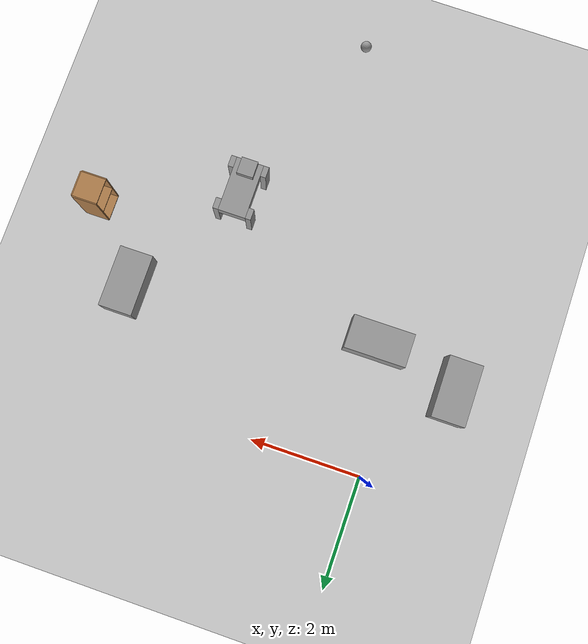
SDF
<sdf version="1.6">
 <world name="default">
  <model name="ground_plane">
   <static>1</static>
   <link name="link">
    <collision name="collision">
     <geometry><plane><normal>0 0 1</normal><size>100 100</size></plane></geometry>
     <surface>
      <contact><collide_bitmask>65535</collide_bitmask></contact>
      <friction><ode><mu>100</mu><mu2>50</mu2></ode></friction>
     </surface>
    </collision>
    <visual name="visual">
     <cast_shadows>0</cast_shadows>
     <geometry><plane><normal>0 0 1</normal><size>100 100</size></plane></geometry>
     <material>
      <script><uri>file://media/materials/scripts/gazebo.material</uri><name>Gazebo/Grey</name></script>
     </material>
    </visual>
   </link>
  </model>
  <model name="robot_clone">
   <link name="link_1_clone">
    <inertial>
     <mass>1</mass>
     <inertia>
      <ixx>0.166667</ixx>
      <ixy>0</ixy>
      <ixz>0</ixz>
      <iyy>0.166667</iyy>
      <iyz>0</iyz>
      <izz>0.166667</izz>
     </inertia>
    </inertial>
    <pose>1e-06 0.058332 0.141667 0 -0 0</pose>
    <visual name="visual">
     <geometry><box><size>0.5 1 0.2</size></box></geometry>
     <material>
      <lighting>1</lighting>
      <script><uri>file://media/materials/scripts/gazebo.material</uri><name>Gazebo/Grey</name></script>
      <shader type="pixel"><normal_map>__default__</normal_map></shader>
      <ambient>0.3 0.3 0.3 1</ambient>
      <diffuse>0.7 0.7 0.7 1</diffuse>
      <specular>0.01 0.01 0.01 1</specular>
      <emissive>0 0 0 1</emissive>
     </material>
    </visual>
    <collision name="collision">
     <geometry><box><size>0.5 1 0.2</size></box></geometry>
     <surface>
      <friction>
       <ode><mu>1</mu><mu2>1</mu2><fdir1>0 0 0</fdir1><slip1>0</slip1><slip2>0</slip2></ode>
       <torsional>
        <coefficient>1</coefficient>
        <patch_radius>0</patch_radius>
        <surface_radius>0</surface_radius>
        <use_patch_radius>1</use_patch_radius>
        <ode><slip>0</slip></ode>
       </torsional>
      </friction>
      <bounce><restitution_coefficient>0</restitution_coefficient><threshold>1e+06</threshold></bounce>
      <contact>
       <collide_without_contact>0</collide_without_contact>
       <collide_without_contact_bitmask>1</collide_without_contact_bitmask>
       <collide_bitmask>1</collide_bitmask>
       <ode>
        <soft_cfm>0</soft_cfm>
        <soft_erp>0.2</soft_erp>
        <kp>1e+13</kp>
        <kd>1</kd>
        <max_vel>0.01</max_vel>
        <min_depth>0</min_depth>
       </ode>
       <bullet>
        <split_impulse>1</split_impulse>
        <split_impulse_penetration_threshold>-0.01</split_impulse_penetration_threshold>
        <soft_cfm>0</soft_cfm>
        <soft_erp>0.2</soft_erp>
        <kp>1e+13</kp>
        <kd>1</kd>
       </bullet>
      </contact>
     </surface>
    </collision>
   </link>
   <link name="link_3_clone">
    <inertial>
     <mass>1</mass>
     <inertia>
      <ixx>0.166667</ixx>
      <ixy>0</ixy>
      <ixz>0</ixz>
      <iyy>0.166667</iyy>
      <iyz>0</iyz>
      <izz>0.166667</izz>
     </inertia>
    </inertial>
    <pose>0.300001 0.458331 -0.108333 0 -0 0</pose>
    <visual name="visual">
     <geometry><box><size>0.1 0.2 0.7</size></box></geometry>
     <material>
      <lighting>1</lighting>
      <script><uri>file://media/materials/scripts/gazebo.material</uri><name>Gazebo/Grey</name></script>
      <shader type="pixel"><normal_map>__default__</normal_map></shader>
      <ambient>0.3 0.3 0.3 1</ambient>
      <diffuse>0.7 0.7 0.7 1</diffuse>
      <specular>0.01 0.01 0.01 1</specular>
      <emissive>0 0 0 1</emissive>
     </material>
    </visual>
    <collision name="collision">
     <geometry><box><size>0.1 0.2 0.7</size></box></geometry>
     <surface>
      <friction>
       <ode><mu>1</mu><mu2>1</mu2><fdir1>0 0 0</fdir1><slip1>0</slip1><slip2>0</slip2></ode>
       <torsional>
        <coefficient>1</coefficient>
        <patch_radius>0</patch_radius>
        <surface_radius>0</surface_radius>
        <use_patch_radius>1</use_patch_radius>
        <ode><slip>0</slip></ode>
       </torsional>
      </friction>
      <bounce><restitution_coefficient>0</restitution_coefficient><threshold>1e+06</threshold></bounce>
      <contact>
       <collide_without_contact>0</collide_without_contact>
       <collide_without_contact_bitmask>1</collide_without_contact_bitmask>
       <collide_bitmask>1</collide_bitmask>
       <ode>
        <soft_cfm>0</soft_cfm>
        <soft_erp>0.2</soft_erp>
        <kp>1e+13</kp>
        <kd>1</kd>
        <max_vel>0.01</max_vel>
        <min_depth>0</min_depth>
       </ode>
       <bullet>
        <split_impulse>1</split_impulse>
        <split_impulse_penetration_threshold>-0.01</split_impulse_penetration_threshold>
        <soft_cfm>0</soft_cfm>
        <soft_erp>0.2</soft_erp>
        <kp>1e+13</kp>
        <kd>1</kd>
       </bullet>
      </contact>
     </surface>
    </collision>
   </link>
   <link name="link_3_clone_clone">
    <inertial>
     <mass>1</mass>
     <inertia>
      <ixx>0.166667</ixx>
      <ixy>0</ixy>
      <ixz>0</ixz>
      <iyy>0.166667</iyy>
      <iyz>0</iyz>
      <izz>0.166667</izz>
     </inertia>
    </inertial>
    <pose>-0.299999 -0.341668 -0.108333 0 -0 0</pose>
    <visual name="visual">
     <geometry><box><size>0.1 0.2 0.7</size></box></geometry>
     <material>
      <lighting>1</lighting>
      <script><uri>file://media/materials/scripts/gazebo.material</uri><name>Gazebo/Grey</name></script>
      <shader type="pixel"><normal_map>__default__</normal_map></shader>
      <ambient>0.3 0.3 0.3 1</ambient>
      <diffuse>0.7 0.7 0.7 1</diffuse>
      <specular>0.01 0.01 0.01 1</specular>
      <emissive>0 0 0 1</emissive>
     </material>
    </visual>
    <collision name="collision">
     <geometry><box><size>0.1 0.2 0.7</size></box></geometry>
     <surface>
      <friction>
       <ode><mu>1</mu><mu2>1</mu2><fdir1>0 0 0</fdir1><slip1>0</slip1><slip2>0</slip2></ode>
       <torsional>
        <coefficient>1</coefficient>
        <patch_radius>0</patch_radius>
        <surface_radius>0</surface_radius>
        <use_patch_radius>1</use_patch_radius>
        <ode><slip>0</slip></ode>
       </torsional>
      </friction>
      <bounce><restitution_coefficient>0</restitution_coefficient><threshold>1e+06</threshold></bounce>
      <contact>
       <collide_without_contact>0</collide_without_contact>
       <collide_without_contact_bitmask>1</collide_without_contact_bitmask>
       <collide_bitmask>1</collide_bitmask>
       <ode>
        <soft_cfm>0</soft_cfm>
        <soft_erp>0.2</soft_erp>
        <kp>1e+13</kp>
        <kd>1</kd>
        <max_vel>0.01</max_vel>
        <min_depth>0</min_depth>
       </ode>
       <bullet>
        <split_impulse>1</split_impulse>
        <split_impulse_penetration_threshold>-0.01</split_impulse_penetration_threshold>
        <soft_cfm>0</soft_cfm>
        <soft_erp>0.2</soft_erp>
        <kp>1e+13</kp>
        <kd>1</kd>
       </bullet>
      </contact>
     </surface>
    </collision>
   </link>
   <link name="link_3_clone_clone_0">
    <inertial>
     <mass>1</mass>
     <inertia>
      <ixx>0.166667</ixx>
      <ixy>0</ixy>
      <ixz>0</ixz>
      <iyy>0.166667</iyy>
      <iyz>0</iyz>
      <izz>0.166667</izz>
     </inertia>
    </inertial>
    <pose>-0.299999 0.458331 -0.108333 0 -0 0</pose>
    <visual name="visual">
     <geometry><box><size>0.1 0.2 0.7</size></box></geometry>
     <material>
      <lighting>1</lighting>
      <script><uri>file://media/materials/scripts/gazebo.material</uri><name>Gazebo/Grey</name></script>
      <shader type="pixel"><normal_map>__default__</normal_map></shader>
      <ambient>0.3 0.3 0.3 1</ambient>
      <diffuse>0.7 0.7 0.7 1</diffuse>
      <specular>0.01 0.01 0.01 1</specular>
      <emissive>0 0 0 1</emissive>
     </material>
    </visual>
    <collision name="collision">
     <geometry><box><size>0.1 0.2 0.7</size></box></geometry>
     <surface>
      <friction>
       <ode><mu>1</mu><mu2>1</mu2><fdir1>0 0 0</fdir1><slip1>0</slip1><slip2>0</slip2></ode>
       <torsional>
        <coefficient>1</coefficient>
        <patch_radius>0</patch_radius>
        <surface_radius>0</surface_radius>
        <use_patch_radius>1</use_patch_radius>
        <ode><slip>0</slip></ode>
       </torsional>
      </friction>
      <bounce><restitution_coefficient>0</restitution_coefficient><threshold>1e+06</threshold></bounce>
      <contact>
       <collide_without_contact>0</collide_without_contact>
       <collide_without_contact_bitmask>1</collide_without_contact_bitmask>
       <collide_bitmask>1</collide_bitmask>
       <ode>
        <soft_cfm>0</soft_cfm>
        <soft_erp>0.2</soft_erp>
        <kp>1e+13</kp>
        <kd>1</kd>
        <max_vel>0.01</max_vel>
        <min_depth>0</min_depth>
       </ode>
       <bullet>
        <split_impulse>1</split_impulse>
        <split_impulse_penetration_threshold>-0.01</split_impulse_penetration_threshold>
        <soft_cfm>0</soft_cfm>
        <soft_erp>0.2</soft_erp>
        <kp>1e+13</kp>
        <kd>1</kd>
       </bullet>
      </contact>
     </surface>
    </collision>
   </link>
   <link name="link_3_clone_clone_1">
    <inertial>
     <mass>1</mass>
     <inertia>
      <ixx>0.166667</ixx>
      <ixy>0</ixy>
      <ixz>0</ixz>
      <iyy>0.166667</iyy>
      <iyz>0</iyz>
      <izz>0.166667</izz>
     </inertia>
    </inertial>
    <pose>0.300001 -0.341668 -0.108333 0 -0 0</pose>
    <visual name="visual">
     <geometry><box><size>0.1 0.2 0.7</size></box></geometry>
     <material>
      <lighting>1</lighting>
      <script><uri>file://media/materials/scripts/gazebo.material</uri><name>Gazebo/Grey</name></script>
      <shader type="pixel"><normal_map>__default__</normal_map></shader>
      <ambient>0.3 0.3 0.3 1</ambient>
      <diffuse>0.7 0.7 0.7 1</diffuse>
      <specular>0.01 0.01 0.01 1</specular>
      <emissive>0 0 0 1</emissive>
     </material>
    </visual>
    <collision name="collision">
     <geometry><box><size>0.1 0.2 0.7</size></box></geometry>
     <surface>
      <friction>
       <ode><mu>1</mu><mu2>1</mu2><fdir1>0 0 0</fdir1><slip1>0</slip1><slip2>0</slip2></ode>
       <torsional>
        <coefficient>1</coefficient>
        <patch_radius>0</patch_radius>
        <surface_radius>0</surface_radius>
        <use_patch_radius>1</use_patch_radius>
        <ode><slip>0</slip></ode>
       </torsional>
      </friction>
      <bounce><restitution_coefficient>0</restitution_coefficient><threshold>1e+06</threshold></bounce>
      <contact>
       <collide_without_contact>0</collide_without_contact>
       <collide_without_contact_bitmask>1</collide_without_contact_bitmask>
       <collide_bitmask>1</collide_bitmask>
       <ode>
        <soft_cfm>0</soft_cfm>
        <soft_erp>0.2</soft_erp>
        <kp>1e+13</kp>
        <kd>1</kd>
        <max_vel>0.01</max_vel>
        <min_depth>0</min_depth>
       </ode>
       <bullet>
        <split_impulse>1</split_impulse>
        <split_impulse_penetration_threshold>-0.01</split_impulse_penetration_threshold>
        <soft_cfm>0</soft_cfm>
        <soft_erp>0.2</soft_erp>
        <kp>1e+13</kp>
        <kd>1</kd>
       </bullet>
      </contact>
     </surface>
    </collision>
   </link>
   <link name="link_4_clone">
    <inertial>
     <mass>1</mass>
     <inertia>
      <ixx>0.166667</ixx>
      <ixy>0</ixy>
      <ixz>0</ixz>
      <iyy>0.166667</iyy>
      <iyz>0</iyz>
      <izz>0.166667</izz>
     </inertia>
    </inertial>
    <pose>1e-06 -0.291669 0.291667 0 -0 0</pose>
    <visual name="visual">
     <geometry><box><size>0.3 0.3 0.1</size></box></geometry>
     <material>
      <lighting>1</lighting>
      <script><uri>file://media/materials/scripts/gazebo.material</uri><name>Gazebo/Grey</name></script>
      <shader type="pixel"><normal_map>__default__</normal_map></shader>
      <ambient>0.3 0.3 0.3 1</ambient>
      <diffuse>0.7 0.7 0.7 1</diffuse>
      <specular>0.01 0.01 0.01 1</specular>
      <emissive>0 0 0 1</emissive>
     </material>
    </visual>
    <collision name="collision">
     <geometry><box><size>0.3 0.3 0.1</size></box></geometry>
     <surface>
      <friction>
       <ode><mu>1</mu><mu2>1</mu2><fdir1>0 0 0</fdir1><slip1>0</slip1><slip2>0</slip2></ode>
       <torsional>
        <coefficient>1</coefficient>
        <patch_radius>0</patch_radius>
        <surface_radius>0</surface_radius>
        <use_patch_radius>1</use_patch_radius>
        <ode><slip>0</slip></ode>
       </torsional>
      </friction>
      <bounce><restitution_coefficient>0</restitution_coefficient><threshold>1e+06</threshold></bounce>
      <contact>
       <collide_without_contact>0</collide_without_contact>
       <collide_without_contact_bitmask>1</collide_without_contact_bitmask>
       <collide_bitmask>1</collide_bitmask>
       <ode>
        <soft_cfm>0</soft_cfm>
        <soft_erp>0.2</soft_erp>
        <kp>1e+13</kp>
        <kd>1</kd>
        <max_vel>0.01</max_vel>
        <min_depth>0</min_depth>
       </ode>
       <bullet>
        <split_impulse>1</split_impulse>
        <split_impulse_penetration_threshold>-0.01</split_impulse_penetration_threshold>
        <soft_cfm>0</soft_cfm>
        <soft_erp>0.2</soft_erp>
        <kp>1e+13</kp>
        <kd>1</kd>
       </bullet>
      </contact>
     </surface>
    </collision>
   </link>
   <joint name="link_1_clone_JOINT_1" type="revolute">
    <parent>link_1_clone</parent>
    <child>link_3_clone_clone_1</child>
    <axis>
     <xyz>1 0 0</xyz>
     <limit>
      <lower>-1.79769e+308</lower>
      <upper>1.79769e+308</upper>
      <effort>-1</effort>
      <velocity>-1</velocity>
     </limit>
     <dynamics>
      <spring_reference>0</spring_reference>
      <spring_stiffness>0</spring_stiffness>
      <damping>0</damping>
     </dynamics>
     <use_parent_model_frame>0</use_parent_model_frame>
    </axis>
    <physics>
     <ode><limit><cfm>0</cfm><erp>0.2</erp></limit><suspension><cfm>0</cfm><erp>0.2</erp></suspension></ode>
    </physics>
   </joint>
   <joint name="link_1_clone_JOINT_2" type="revolute">
    <parent>link_1_clone</parent>
    <child>link_3_clone_clone</child>
    <axis>
     <xyz>1 0 0</xyz>
     <limit>
      <lower>-1.79769e+308</lower>
      <upper>1.79769e+308</upper>
      <effort>-1</effort>
      <velocity>-1</velocity>
     </limit>
     <dynamics>
      <spring_reference>0</spring_reference>
      <spring_stiffness>0</spring_stiffness>
      <damping>0</damping>
     </dynamics>
     <use_parent_model_frame>0</use_parent_model_frame>
    </axis>
    <physics>
     <ode><limit><cfm>0</cfm><erp>0.2</erp></limit><suspension><cfm>0</cfm><erp>0.2</erp></suspension></ode>
    </physics>
   </joint>
   <joint name="link_1_clone_JOINT_3" type="revolute">
    <parent>link_1_clone</parent>
    <child>link_3_clone_clone_0</child>
    <axis>
     <xyz>1 0 0</xyz>
     <limit>
      <lower>-1.79769e+308</lower>
      <upper>1.79769e+308</upper>
      <effort>-1</effort>
      <velocity>-1</velocity>
     </limit>
     <dynamics>
      <spring_reference>0</spring_reference>
      <spring_stiffness>0</spring_stiffness>
      <damping>0</damping>
     </dynamics>
     <use_parent_model_frame>0</use_parent_model_frame>
    </axis>
    <physics>
     <ode><limit><cfm>0</cfm><erp>0.2</erp></limit><suspension><cfm>0</cfm><erp>0.2</erp></suspension></ode>
    </physics>
   </joint>
   <joint name="link_1_clone_JOINT_4" type="revolute">
    <parent>link_1_clone</parent>
    <child>link_3_clone</child>
    <axis>
     <xyz>1 0 0</xyz>
     <limit>
      <lower>-1.79769e+308</lower>
      <upper>1.79769e+308</upper>
      <effort>-1</effort>
      <velocity>-1</velocity>
     </limit>
     <dynamics>
      <spring_reference>0</spring_reference>
      <spring_stiffness>0</spring_stiffness>
      <damping>0</damping>
     </dynamics>
     <use_parent_model_frame>0</use_parent_model_frame>
    </axis>
    <physics>
     <ode><limit><cfm>0</cfm><erp>0.2</erp></limit><suspension><cfm>0</cfm><erp>0.2</erp></suspension></ode>
    </physics>
   </joint>
   <joint name="link_1_clone_JOINT_5" type="revolute">
    <parent>link_1_clone</parent>
    <child>link_4_clone</child>
    <axis>
     <xyz>0 0 1</xyz>
     <limit>
      <lower>-1.79769e+308</lower>
      <upper>1.79769e+308</upper>
      <effort>-1</effort>
      <velocity>-1</velocity>
     </limit>
     <dynamics>
      <spring_reference>0</spring_reference>
      <spring_stiffness>0</spring_stiffness>
      <damping>0</damping>
     </dynamics>
     <use_parent_model_frame>0</use_parent_model_frame>
    </axis>
    <physics>
     <ode><limit><cfm>0</cfm><erp>0.2</erp></limit><suspension><cfm>0</cfm><erp>0.2</erp></suspension></ode>
    </physics>
   </joint>
   <static>0</static>
   <pose>3.57228 -4.12662 0.458333 0 0 -0.000257</pose>
  </model>
  <model name="cabinet_clone">
   <static>1</static>
   <link name="cabinet_bottom_plate">
    <inertial>
     <pose>0 0 -1 0 -0 0</pose>
     <inertia><ixx>2.05</ixx><ixy>0</ixy><ixz>0</ixz><iyy>2.05</iyy><iyz>0</iyz><izz>2.05</izz></inertia>
     <mass>25</mass>
    </inertial>
    <collision name="cabinet_bottom_plate_geom">
     <pose>0 0 0.01 0 -0 0</pose>
     <geometry><box><size>0.45 0.45 0.02</size></box></geometry>
    </collision>
    <visual name="cabinet_bottom_plate_geom_visual">
     <pose>0 0 0.01 0 -0 0</pose>
     <geometry><box><size>0.45 0.45 0.02</size></box></geometry>
     <material>
      <script><uri>file://media/materials/scripts/gazebo.material</uri><name>Gazebo/Wood</name></script>
     </material>
    </visual>
    <collision name="cabinet_bottom_plate_geom_cabinet_back_plate">
     <pose>0.235 0 0.51 0 -0 0</pose>
     <geometry><box><size>0.02 0.45 1.02</size></box></geometry>
    </collision>
    <visual name="cabinet_bottom_plate_geom_cabinet_back_plate_visual">
     <pose>0.235 0 0.51 0 -0 0</pose>
     <geometry><box><size>0.02 0.45 1.02</size></box></geometry>
     <material>
      <script><uri>file://media/materials/scripts/gazebo.material</uri><name>Gazebo/Wood</name></script>
     </material>
    </visual>
    <collision name="cabinet_bottom_plate_geom_cabinet_left_plate">
     <pose>0 0.235 0.51 0 -0 0</pose>
     <geometry><box><size>0.45 0.02 1.02</size></box></geometry>
    </collision>
    <visual name="cabinet_bottom_plate_geom_cabinet_left_plate_visual">
     <pose>0 0.235 0.51 0 -0 0</pose>
     <geometry><box><size>0.45 0.02 1.02</size></box></geometry>
     <material>
      <script><uri>file://media/materials/scripts/gazebo.material</uri><name>Gazebo/Wood</name></script>
     </material>
    </visual>
    <collision name="cabinet_bottom_plate_geom_cabinet_middle_plate">
     <pose>0 0 0.51 0 -0 0</pose>
     <geometry><box><size>0.45 0.45 0.02</size></box></geometry>
    </collision>
    <visual name="cabinet_bottom_plate_geom_cabinet_middle_plate_visual">
     <pose>0 0 0.51 0 -0 0</pose>
     <geometry><box><size>0.45 0.45 0.02</size></box></geometry>
     <material>
      <script><uri>file://media/materials/scripts/gazebo.material</uri><name>Gazebo/Wood</name></script>
     </material>
    </visual>
    <collision name="cabinet_bottom_plate_geom_cabinet_right_plate">
     <pose>0 -0.235 0.51 0 -0 0</pose>
     <geometry><box><size>0.45 0.02 1.02</size></box></geometry>
    </collision>
    <visual name="cabinet_bottom_plate_geom_cabinet_right_plate_visual">
     <pose>0 -0.235 0.51 0 -0 0</pose>
     <geometry><box><size>0.45 0.02 1.02</size></box></geometry>
     <material>
      <script><uri>file://media/materials/scripts/gazebo.material</uri><name>Gazebo/Wood</name></script>
     </material>
    </visual>
    <collision name="cabinet_bottom_plate_geom_cabinet_top_plate">
     <pose>0 0 1.01 0 -0 0</pose>
     <geometry><box><size>0.45 0.45 0.02</size></box></geometry>
    </collision>
    <visual name="cabinet_bottom_plate_geom_cabinet_top_plate_visual">
     <pose>0 0 1.01 0 -0 0</pose>
     <geometry><box><size>0.45 0.45 0.02</size></box></geometry>
     <material>
      <script><uri>file://media/materials/scripts/gazebo.material</uri><name>Gazebo/Wood</name></script>
     </material>
    </visual>
   </link>
   <pose>5.97084 -3.13957 0 0 -0 0</pose>
  </model>
  <model name="my_ball">
   <link name="link_0">
    <inertial>
     <mass>1</mass>
     <inertia><ixx>0.1</ixx><ixy>0</ixy><ixz>0</ixz><iyy>0.1</iyy><iyz>0</iyz><izz>0.1</izz></inertia>
    </inertial>
    <visual name="visual">
     <geometry><sphere><radius>0.1</radius></sphere></geometry>
     <material>
      <lighting>1</lighting>
      <script><uri>file://media/materials/scripts/gazebo.material</uri><name>Gazebo/Grey</name></script>
      <shader type="pixel"><normal_map>__default__</normal_map></shader>
      <ambient>1 1 1 1</ambient>
      <diffuse>1 1 1 1</diffuse>
      <specular>1 1 1 1</specular>
      <emissive>1 1 1 1</emissive>
     </material>
    </visual>
    <collision name="collision">
     <geometry><sphere><radius>0.1</radius></sphere></geometry>
     <surface>
      <friction>
       <ode><mu>1</mu><mu2>1</mu2><fdir1>0 0 0</fdir1><slip1>0</slip1><slip2>0</slip2></ode>
       <torsional>
        <coefficient>1</coefficient>
        <patch_radius>0</patch_radius>
        <surface_radius>0</surface_radius>
        <use_patch_radius>1</use_patch_radius>
        <ode><slip>0</slip></ode>
       </torsional>
      </friction>
      <bounce><restitution_coefficient>0</restitution_coefficient><threshold>1e+06</threshold></bounce>
      <contact>
       <collide_without_contact>0</collide_without_contact>
       <collide_without_contact_bitmask>1</collide_without_contact_bitmask>
       <collide_bitmask>1</collide_bitmask>
       <ode>
        <soft_cfm>0</soft_cfm>
        <soft_erp>0.2</soft_erp>
        <kp>1e+13</kp>
        <kd>1</kd>
        <max_vel>0.01</max_vel>
        <min_depth>0</min_depth>
       </ode>
       <bullet>
        <split_impulse>1</split_impulse>
        <split_impulse_penetration_threshold>-0.01</split_impulse_penetration_threshold>
        <soft_cfm>0</soft_cfm>
        <soft_erp>0.2</soft_erp>
        <kp>1e+13</kp>
        <kd>1</kd>
       </bullet>
      </contact>
     </surface>
    </collision>
   </link>
   <static>0</static>
   <pose>2.34159 -7.57173 0.1 0 -0 0</pose>
  </model>
  <model name="unit_box_0_clone">
   <pose>-1.0857 -1.93444 0.250166 0 0 -4e-06</pose>
   <link name="link">
    <inertial>
     <mass>1</mass>
     <inertia>
      <ixx>0.166667</ixx>
      <ixy>0</ixy>
      <ixz>0</ixz>
      <iyy>0.166667</iyy>
      <iyz>0</iyz>
      <izz>0.166667</izz>
     </inertia>
    </inertial>
    <collision name="collision"><geometry><box><size>0.605855 1.11056 0.500333</size></box></geometry></collision>
    <visual name="visual">
     <geometry><box><size>0.605855 1.11056 0.500333</size></box></geometry>
     <material>
      <script><name>Gazebo/Grey</name><uri>file://media/materials/scripts/gazebo.material</uri></script>
     </material>
    </visual>
   </link>
  </model>
  <model name="unit_box_0_clone_0">
   <pose>4.94997 -1.89351 0.250166 0 0 -2.7e-05</pose>
   <link name="link">
    <inertial>
     <mass>1</mass>
     <inertia>
      <ixx>0.166667</ixx>
      <ixy>0</ixy>
      <ixz>0</ixz>
      <iyy>0.166667</iyy>
      <iyz>0</iyz>
      <izz>0.166667</izz>
     </inertia>
    </inertial>
    <collision name="collision"><geometry><box><size>0.605855 1.11056 0.500333</size></box></geometry></collision>
    <visual name="visual">
     <geometry><box><size>0.605855 1.11056 0.500333</size></box></geometry>
     <material>
      <script><name>Gazebo/Grey</name><uri>file://media/materials/scripts/gazebo.material</uri></script>
     </material>
    </visual>
   </link>
  </model>
  <model name="unit_box_0_clone_1">
   <pose>0.435506 -2.32594 0.250166 0 -0 1.57364</pose>
   <link name="link">
    <inertial>
     <mass>1</mass>
     <inertia>
      <ixx>0.166667</ixx>
      <ixy>0</ixy>
      <ixz>0</ixz>
      <iyy>0.166667</iyy>
      <iyz>0</iyz>
      <izz>0.166667</izz>
     </inertia>
    </inertial>
    <collision name="collision"><geometry><box><size>0.605855 1.11056 0.500333</size></box></geometry></collision>
    <visual name="visual">
     <geometry><box><size>0.605855 1.11056 0.500333</size></box></geometry>
     <material>
      <script><name>Gazebo/Grey</name><uri>file://media/materials/scripts/gazebo.material</uri></script>
     </material>
    </visual>
   </link>
  </model>
 </world>
</sdf>
